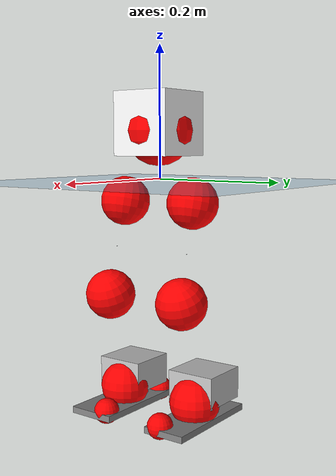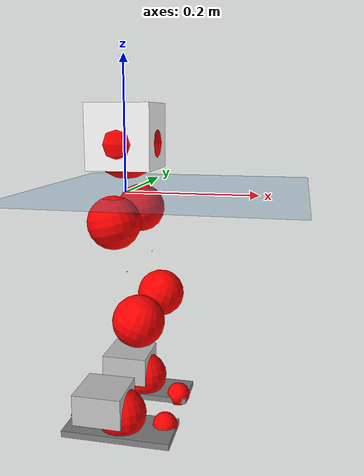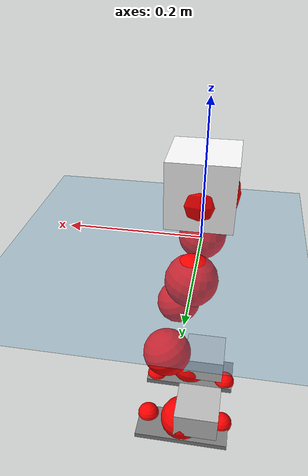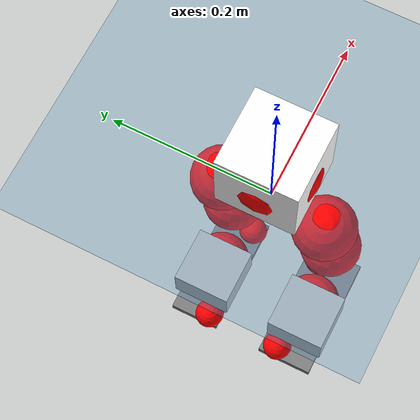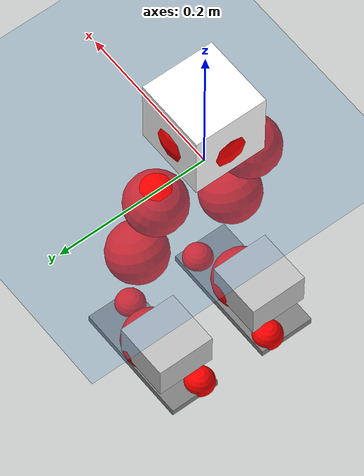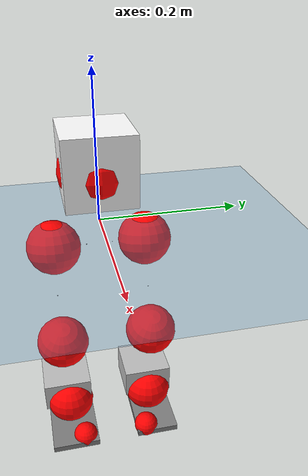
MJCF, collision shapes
<mujoco model="pi_12dof_release_v1">
  <compiler angle="radian" assetdir="assets" balanceinertia="true" inertiafromgeom="false"/>

  <option timestep="0.005" density="1.2" viscosity="2e-05"/>

  <size nkey="1"/>

  <visual>
    <quality shadowsize="8192"/>
    <map shadowclip="0.5"/>
  </visual>

  <default>
    <default class="/">
      <joint armature="0.01" damping="0.01" frictionloss="0.01"/>
      <geom contype="0" conaffinity="0" group="1" solref="-1000 -80"/>
      <site size="0.01 0.005 0.005" group="5"/>
      <general forcelimited="true" biastype="affine" gainprm="20" biasprm="0 -20 -0.5"/>
      <default class="foot">
        <geom size="0.0845 0.036 0.005" type="box" condim="6" group="4" priority="1" friction="0.9 0.2 0.2" solimp="0.015 1 0.005"/>
      </default>
      <default class="reward_collision_sphere">
        <geom group="5" rgba="1 0 0 1"/>
      </default>
    </default>
  </default>

  <asset>
    <texture type="skybox" colorspace="auto" name="//unnamed_texture_0" builtin="gradient" rgb1="0.95 0.95 0.95" rgb2="0.95 0.95 0.95" width="100" height="600"/>
    <texture type="2d" colorspace="auto" name="texplane" builtin="checker" rgb1="0.345 0.575 0.748" rgb2="0.345 0.575 0.748" markrgb="1 1 1" width="512" height="512"/>
    <material name="MatPlane" class="/" texture="texplane" texuniform="true" texrepeat="2 2" specular="0.9"/>
    <mesh name="baselink_1" class="/" file="baselink_1.STL"/>
    <mesh name="r_hip_pitch_link" class="/" file="r_hip_pitch_link.STL"/>
    <mesh name="r_hip_roll_link" class="/" file="r_hip_roll_link.STL"/>
    <mesh name="r_thigh_link" class="/" file="r_thigh_link.STL"/>
    <mesh name="r_calf_link" class="/" file="r_calf_link.STL"/>
    <mesh name="r_ankle_pitch_link" class="/" file="r_ankle_pitch_link.STL"/>
    <mesh name="r_ankle_roll_link" class="/" file="r_ankle_roll_link.STL"/>
    <mesh name="l_hip_pitch_link" class="/" file="l_hip_pitch_link.STL"/>
    <mesh name="l_hip_roll_link" class="/" file="l_hip_roll_link.STL"/>
    <mesh name="l_thigh_link" class="/" file="l_thigh_link.STL"/>
    <mesh name="l_calf_link" class="/" file="l_calf_link.STL"/>
    <mesh name="l_ankle_pitch_link" class="/" file="l_ankle_pitch_link.STL"/>
    <mesh name="l_ankle_roll_link" class="/" file="l_ankle_roll_link.STL"/>
  </asset>

  <worldbody>
    <geom name="floor" class="/" size="100 100 0.125" type="plane" group="0" material="MatPlane"/>
    <light name="toplight_shadow" class="/" pos="0 0 5" dir="0.0990148 0.0990148 -0.990148" type="directional" ambient="0.04 0.04 0.04" diffuse="0.55 0.55 0.55" specular="0.12 0.12 0.12"/>
    <light name="toplight_fill" class="/" pos="0 0 5" dir="0.0990148 0.0990148 -0.990148" type="directional" castshadow="false" ambient="0.04 0.04 0.04" diffuse="0.3 0.3 0.3" specular="0.08 0.08 0.08"/>
    <body name="trunk" pos="0.00248336 -0.000683859 -0.000495961" quat="1 3.95148e-05 0.000103755 0.000498173">
      <inertial pos="0.00242254 0.000597479 0.0420649" quat="0.694325 0.00982587 0.00881482 0.71954" mass="1.8753" diaginertia="0.00969638 0.00387107 0.00509373"/>
      <joint name="//unnamed_joint_0" type="free"/>
      <geom name="//unnamed_geom_1" class="/" type="mesh" density="0" rgba="1 1 1 1" mesh="baselink_1"/>
      <geom name="//unnamed_geom_2" class="/" size="0.0477676 0.0477676 0.0477676" pos="0 0 0.0832634" type="box" rgba="1 1 1 1"/>
      <geom name="//unnamed_geom_3" class="reward_collision_sphere" size="0.0525444" pos="0 0 0.0728555"/>
      <site name="imu" class="/" pos="-0.00533928 0.00110979 -0.0133473" size="0.00955353"/>
      <camera name="track" class="/" pos="0 -1.67706 0" quat="0.707107 0.707107 0 0" mode="trackcom"/>
      <camera name="ego_camera" class="/" pos="0.0740051 0 0.187343" quat="-0.5 -0.5 0.5 0.5"/>
      <body name="r_hip_pitch_link" pos="0.00146621 -0.0193967 -0.034653" quat="0.992269 -0.000929552 -0.124098 0.000576466">
        <inertial pos="-0.00152552 -0.047319 -2.61603e-05" quat="-0.0197297 0.706749 -0.0288799 0.7066" mass="0.324498" diaginertia="0.000102069 3.96192e-05 0.000100931"/>
        <joint name="r_hip_pitch_joint" class="/" pos="0 0 0" axis="-0.012037 -0.999907 0.00644029" stiffness="0.00234257" range="-1.69674 1.27347" armature="0.0094995" damping="0.025652" frictionloss="0.00949962"/>
        <geom name="//unnamed_geom_4" class="/" type="mesh" density="0" rgba="0.75294 0.75294 0.75294 1" mesh="r_hip_pitch_link"/>
        <geom name="//unnamed_geom_5" class="/" size="0.000477676 0.000477676 0.000477676" type="box" rgba="0.75294 0.75294 0.75294 1"/>
        <body name="r_hip_roll_link" pos="-0.00117711 -0.0462922 8.88688e-05" quat="1 -2.75492e-05 1.22965e-05 4.17977e-05">
          <inertial pos="-0.00133343 0.000403001 -0.0664669" quat="0.705362 -0.0792371 -0.0828443 0.699516" mass="0.345034" diaginertia="0.000317389 0.000116757 0.0001581"/>
          <joint name="r_hip_roll_joint" class="/" pos="0 0 0" axis="-0.99994 -0.00819521 0.0073145" range="-0.127373 0.544574" armature="0.00930685" damping="0.00431273" frictionloss="0.00878288"/>
          <geom name="//unnamed_geom_6" class="/" type="mesh" density="0" rgba="0.75294 0.75294 0.75294 1" mesh="r_hip_roll_link"/>
          <geom name="//unnamed_geom_7" class="/" size="0.000477676 0.000477676 0.000477676" type="box" rgba="0.75294 0.75294 0.75294 1"/>
          <geom name="//unnamed_geom_8" class="reward_collision_sphere" size="0.0382141"/>
          <body name="r_thigh_link" pos="0.000993644 -0.00218417 -0.072105" quat="1 0.000402619 -0.000271802 0.000585591">
            <inertial pos="0.000369092 0.00208681 -0.0496527" quat="0.738283 0.674366 -0.0101851 -0.00810029" mass="0.100269" diaginertia="0.000115365 3.95044e-05 6.94232e-05"/>
            <joint name="r_thigh_joint" class="/" pos="0 0 0" axis="-0.0054772 0.00460528 -0.999974" range="-0.270534 0.647239" armature="0.00934604" damping="0.00366261" frictionloss="0.00965127"/>
            <geom name="//unnamed_geom_9" class="/" type="mesh" density="0" rgba="0.75294 0.75294 0.75294 1" mesh="r_thigh_link"/>
            <geom name="//unnamed_geom_10" class="/" size="0.000477676 0.000477676 0.000477676" type="box" rgba="0.75294 0.75294 0.75294 1"/>
            <body name="r_calf_link" pos="-0.00251805 0.000221634 -0.0750463" quat="0.947653 -0.000166744 0.319303 9.96778e-05">
              <inertial pos="0.00232847 -0.00170989 -0.0752975" quat="0.999993 -0.00225667 -0.00259097 0.00142415" mass="0.730287" diaginertia="0.00337939 0.00147667 0.000220284"/>
              <joint name="r_calf_joint" class="/" pos="0 0 0" axis="0.0087343 -0.999952 -0.0044717" range="-1.6579 0.646335" armature="0.00962047" damping="0.0123936" frictionloss="0.00979971"/>
              <geom name="//unnamed_geom_11" class="/" type="mesh" density="0" rgba="0.75294 0.75294 0.75294 1" mesh="r_calf_link"/>
              <geom name="//unnamed_geom_12" class="/" size="0.000477676 0.000477676 0.000477676" type="box" rgba="0.75294 0.75294 0.75294 1"/>
              <geom name="//unnamed_geom_13" class="reward_collision_sphere" size="0.0382141"/>
              <body name="r_ankle_pitch_link" pos="0.000385511 0.00022993 -0.144859" quat="0.98008 1.7346e-05 -0.198602 1.53747e-05">
                <inertial pos="0.00454974 0.0056539 -0.00130905" quat="0.00215214 0.706679 -0.00130685 0.70753" mass="0.151501" diaginertia="0.000287944 9.02895e-05 0.000144366"/>
                <joint name="r_ankle_pitch_joint" class="/" pos="0 0 0" axis="0.00750386 -0.999971 -0.00142007" range="-1.30918 0.497737" armature="0.00857204" damping="0.00769517" frictionloss="0.00881207"/>
                <geom name="//unnamed_geom_14" class="/" type="mesh" density="0" rgba="0.75294 0.75294 0.75294 1" mesh="r_ankle_pitch_link"/>
                <geom name="//unnamed_geom_15" class="/" size="0.0372588 0.0382141 0.0238838" type="box" rgba="0.75294 0.75294 0.75294 1"/>
                <body name="r_ankle_roll_link" pos="0.0756947 0.00304592 0.00254193" quat="0.999999 -0.00112422 -0.000602357 -0.000512246">
                  <inertial pos="-0.0209652 -0.000813713 -0.012993" quat="0.558864 0.433666 0.433294 0.558445" mass="0.441706" diaginertia="0.00106561 0.000442258 0.000359301"/>
                  <joint name="r_ankle_roll_joint" class="/" pos="0 0 0" axis="-0.999921 0.0125022 -0.00144769" range="-0.15504 0.158284" armature="0.00905239" damping="0.0203317" frictionloss="0.00976535"/>
                  <geom name="//unnamed_geom_16" class="/" type="mesh" density="0" rgba="0.75294 0.75294 0.75294 1" mesh="r_ankle_roll_link"/>
                  <geom name="//unnamed_geom_17" class="/" type="mesh" rgba="0.75294 0.75294 0.75294 1" mesh="r_ankle_roll_link"/>
                  <geom name="right_foot" class="foot" size="0.0831637 0.0368331 0.00488012" pos="-0.0503235 0 -0.0457949"/>
                  <geom name="//unnamed_geom_19" class="reward_collision_sphere" size="0.0382141" pos="-0.0493367 0 -0.0208158"/>
                  <geom name="//unnamed_geom_20" class="reward_collision_sphere" size="0.0191071" pos="0.014801 0.0167706 -0.0416317"/>
                  <geom name="//unnamed_geom_21" class="reward_collision_sphere" size="0.0191071" pos="-0.118408 0.0167706 -0.0416317"/>
                  <site name="right_foot" class="foot" pos="-0.0503235 0 -0.0457949" size="0.00955353"/>
                </body>
              </body>
            </body>
          </body>
        </body>
      </body>
      <body name="l_hip_pitch_link" pos="0.00209449 0.0173221 -0.0342886" quat="0.992221 0.000275579 -0.124492 5.90319e-05">
        <inertial pos="0.00347325 0.0425623 -2.3972e-05" quat="-0.0503073 0.705008 0.0273225 0.706885" mass="0.3412" diaginertia="0.000122075 4.38473e-05 0.000119846"/>
        <joint name="l_hip_pitch_joint" class="/" pos="0 0 0" axis="-0.0108735 0.999941 -0.000713797" range="-1.29873 1.74335" armature="0.00827318" damping="0.00570084" frictionloss="0.00954041"/>
        <geom name="//unnamed_geom_22" class="/" type="mesh" density="0" rgba="0.75294 0.75294 0.75294 1" mesh="l_hip_pitch_link"/>
        <geom name="//unnamed_geom_23" class="/" size="0.000477676 0.000477676 0.000477676" type="box" rgba="0.75294 0.75294 0.75294 1"/>
        <body name="l_hip_roll_link" pos="0.00144044 0.0468837 0.00066522" quat="1 -0.000184769 0.000180594 0.000153282">
          <inertial pos="-0.00233221 0.00262886 -0.0634337" quat="0.700788 -0.0839012 -0.0803998 0.703841" mass="0.341664" diaginertia="0.000312732 0.000118194 0.000154758"/>
          <joint name="l_hip_roll_joint" class="/" pos="0 0 0" axis="-0.999999 -0.00117329 -0.000810064" range="-0.495985 0.109252" armature="0.0106709" damping="0" frictionloss="0.00927121"/>
          <geom name="//unnamed_geom_24" class="/" type="mesh" density="0" rgba="0.75294 0.75294 0.75294 1" mesh="l_hip_roll_link"/>
          <geom name="//unnamed_geom_25" class="/" size="0.000477676 0.000477676 0.000477676" type="box" rgba="0.75294 0.75294 0.75294 1"/>
          <geom name="//unnamed_geom_26" class="reward_collision_sphere" size="0.0382141"/>
          <body name="l_thigh_link" pos="-0.000834285 0.00176214 -0.0747865" quat="0.999999 0.00054005 0.00114263 0.000331335">
            <inertial pos="-0.000107293 -0.001456 -0.0469406" quat="0.674327 0.738432 0.00105042 -0.000495812" mass="0.0947324" diaginertia="0.00011604 3.92118e-05 7.06767e-05"/>
            <joint name="l_thigh_joint" class="/" pos="0 0 0" axis="-0.00276096 0.00560673 -0.99998" range="-0.654262 0.300112" armature="0.00949425" damping="0" frictionloss="0.00968631"/>
            <geom name="//unnamed_geom_27" class="/" type="mesh" density="0" rgba="0.75294 0.75294 0.75294 1" mesh="l_thigh_link"/>
            <geom name="//unnamed_geom_28" class="/" size="0.000477676 0.000477676 0.000477676" type="box" rgba="0.75294 0.75294 0.75294 1"/>
            <body name="l_calf_link" pos="-0.00330645 0.000895359 -0.0722502" quat="0.947726 -1.83412e-05 0.319086 -0.000468593">
              <inertial pos="0.00185896 0.00256235 -0.0724666" quat="0.99994 0.00165998 -0.0100592 -0.00399565" mass="0.714267" diaginertia="0.00334707 0.00148441 0.000217553"/>
              <joint name="l_calf_joint" class="/" pos="0 0 0" axis="-0.013105 0.999914 0.000425608" stiffness="0.00224058" range="-0.620868 1.63938" armature="0.00943397" damping="0.00896437" frictionloss="0.00848464"/>
              <geom name="//unnamed_geom_29" class="/" type="mesh" density="0" rgba="0.75294 0.75294 0.75294 1" mesh="l_calf_link"/>
              <geom name="//unnamed_geom_30" class="/" size="0.000477676 0.000477676 0.000477676" type="box" rgba="0.75294 0.75294 0.75294 1"/>
              <geom name="//unnamed_geom_31" class="reward_collision_sphere" size="0.0382141"/>
              <body name="l_ankle_pitch_link" pos="9.35079e-05 0.0013573 -0.143699" quat="0.980134 -3.58242e-05 -0.198339 2.89978e-05">
                <inertial pos="0.00364744 -0.00128179 -0.00111742" quat="-0.000742884 0.698023 0.00568963 0.716053" mass="0.154958" diaginertia="0.000285209 9.42323e-05 0.000150767"/>
                <joint name="l_ankle_pitch_joint" class="/" pos="0 0 0" axis="0.00288735 0.999991 0.00320432" range="-0.483543 1.32625" armature="0.0101082" damping="0" frictionloss="0.00918941"/>
                <geom name="//unnamed_geom_32" class="/" type="mesh" density="0" rgba="0.75294 0.75294 0.75294 1" mesh="l_ankle_pitch_link"/>
                <geom name="//unnamed_geom_33" class="/" size="0.0372588 0.0382141 0.0238838" type="box" rgba="0.75294 0.75294 0.75294 1"/>
                <body name="l_ankle_roll_link" pos="0.0751106 0.00140403 -0.00038076" quat="1 2.68631e-05 -2.5237e-05 -5.53138e-05">
                  <inertial pos="-0.0267956 -0.00289501 -0.0124698" quat="0.560543 0.432618 0.433703 0.557257" mass="0.463606" diaginertia="0.00103851 0.000438742 0.000345517"/>
                  <joint name="l_ankle_roll_joint" class="/" pos="0 0 0" axis="-0.999989 0.0047018 0.000887704" stiffness="0.00787891" range="-0.172317 0.133444" armature="0.00942241" damping="0.0201694" frictionloss="0.0107148"/>
                  <geom name="//unnamed_geom_34" class="/" type="mesh" density="0" rgba="0.75294 0.75294 0.75294 1" mesh="l_ankle_roll_link"/>
                  <geom name="//unnamed_geom_35" class="/" type="mesh" rgba="0.75294 0.75294 0.75294 1" mesh="l_ankle_roll_link"/>
                  <geom name="left_foot" class="foot" size="0.0809329 0.0331509 0.00482725" pos="-0.0503235 0 -0.0457949"/>
                  <geom name="//unnamed_geom_37" class="reward_collision_sphere" size="0.0382141" pos="-0.0493367 0 -0.0208158"/>
                  <geom name="//unnamed_geom_38" class="reward_collision_sphere" size="0.0191071" pos="0.014801 -0.0167706 -0.0416317"/>
                  <geom name="//unnamed_geom_39" class="reward_collision_sphere" size="0.0191071" pos="-0.118408 -0.0167706 -0.0416317"/>
                  <site name="left_foot" class="foot" pos="-0.0503235 0 -0.0457949" size="0.00955353"/>
                </body>
              </body>
            </body>
          </body>
        </body>
      </body>
    </body>
  </worldbody>

  <contact>
    <pair class="/" geom1="floor" geom2="right_foot" name="//unnamed_contact_1"/>
    <pair class="/" geom1="floor" geom2="left_foot" name="//unnamed_contact_0"/>
  </contact>

  <actuator>
    <general name="r_hip_pitch_joint" class="/" joint="r_hip_pitch_joint" forcerange="-19.8462 19.8462" gainprm="19.2617" biasprm="0 -19.2617 -0.478088"/>
    <general name="r_hip_roll_joint" class="/" joint="r_hip_roll_joint" forcerange="-22.011 22.011" gainprm="19.2617" biasprm="0 -19.2617 -0.478088"/>
    <general name="r_thigh_joint" class="/" joint="r_thigh_joint" forcerange="-20.6485 20.6485" gainprm="19.2617" biasprm="0 -19.2617 -0.478088"/>
    <general name="r_calf_joint" class="/" joint="r_calf_joint" forcerange="-22.0511 22.0511" gainprm="19.2617" biasprm="0 -19.2617 -0.478088"/>
    <general name="r_ankle_pitch_joint" class="/" joint="r_ankle_pitch_joint" forcerange="-20.8339 20.8339" gainprm="19.2617" biasprm="0 -19.2617 -0.478088"/>
    <general name="r_ankle_roll_joint" class="/" joint="r_ankle_roll_joint" forcerange="-19.254 19.254" gainprm="19.2617" biasprm="0 -19.2617 -0.478088"/>
    <general name="l_hip_pitch_joint" class="/" joint="l_hip_pitch_joint" forcerange="-20.032 20.032" gainprm="19.2617" biasprm="0 -19.2617 -0.478088"/>
    <general name="l_hip_roll_joint" class="/" joint="l_hip_roll_joint" forcerange="-18.3966 18.3966" gainprm="19.2617" biasprm="0 -19.2617 -0.478088"/>
    <general name="l_thigh_joint" class="/" joint="l_thigh_joint" forcerange="-19.7159 19.7159" gainprm="19.2617" biasprm="0 -19.2617 -0.478088"/>
    <general name="l_calf_joint" class="/" joint="l_calf_joint" forcerange="-19.9603 19.9603" gainprm="19.2617" biasprm="0 -19.2617 -0.478088"/>
    <general name="l_ankle_pitch_joint" class="/" joint="l_ankle_pitch_joint" forcerange="-20.0542 20.0542" gainprm="19.2617" biasprm="0 -19.2617 -0.478088"/>
    <general name="l_ankle_roll_joint" class="/" joint="l_ankle_roll_joint" forcerange="-20.5844 20.5844" gainprm="19.2617" biasprm="0 -19.2617 -0.478088"/>
  </actuator>

  <sensor>
    <gyro site="imu" name="imu_angular_velocity"/>
    <velocimeter site="imu" name="imu_linear_velocity"/>
    <framelinvel objtype="site" objname="left_foot" name="left_foot_global_linear_velocity"/>
    <framelinvel objtype="site" objname="right_foot" name="right_foot_global_linear_velocity"/>
  </sensor>

  <keyframe>
    <key name="home" qpos="0 0 0.291 1 0 0 0 0.4 0 0 -0.8 0.4 0 -0.4 0 0 0.8 -0.4 0"/>
  </keyframe>
</mujoco>
